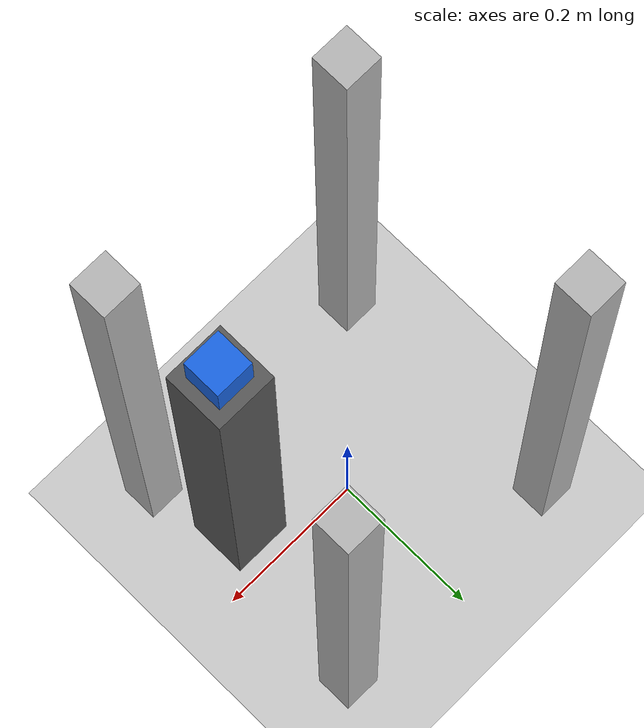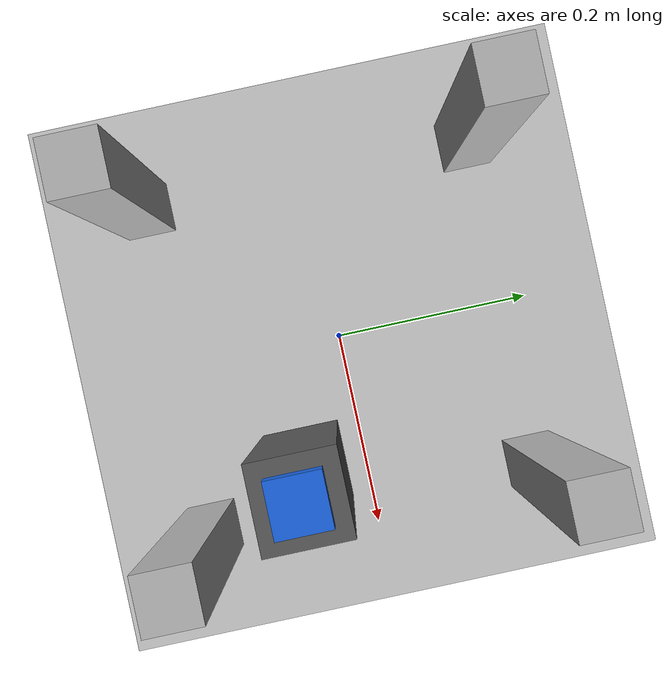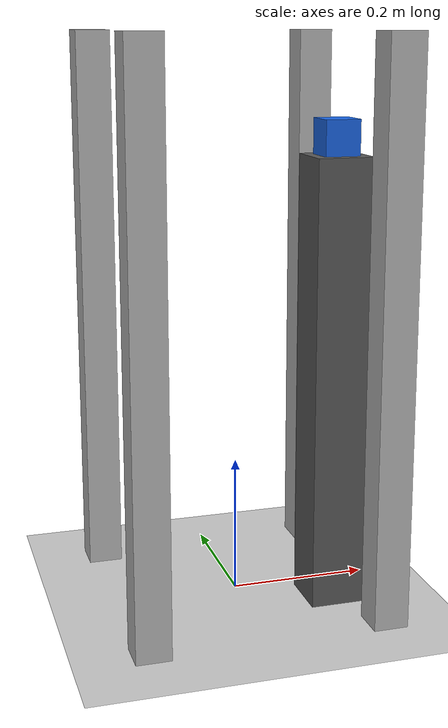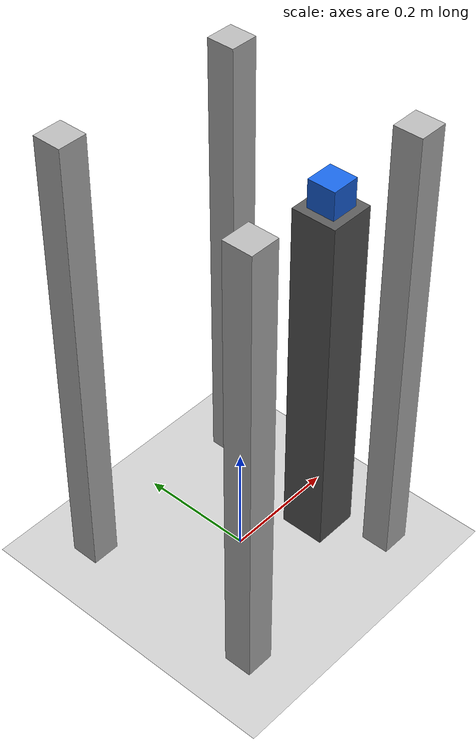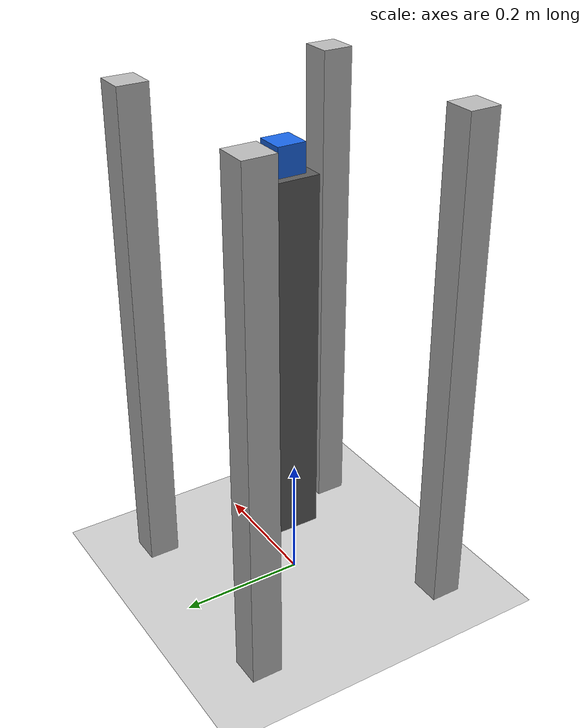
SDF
<?xml version="1.0"?>
<sdf version="1.9">
  <!-- Validation-only world.  The box is a generic 0.25 kg test object, not
       the user's final payload; its pose is aligned with formal work_a. -->
  <world name="flight_world">
    <gravity>0 0 -9.81</gravity>
    <magnetic_field>6e-06 2.3e-05 -4.2e-05</magnetic_field>
    <atmosphere type="adiabatic"/>
    <physics name="flight_step" type="ignored">
      <max_step_size>0.004</max_step_size>
      <real_time_factor>1.0</real_time_factor>
    </physics>
    <plugin filename="gz-sim-physics-system" name="gz::sim::systems::Physics"/>
    <plugin filename="gz-sim-user-commands-system" name="gz::sim::systems::UserCommands"/>
    <plugin filename="gz-sim-scene-broadcaster-system" name="gz::sim::systems::SceneBroadcaster"/>
    <plugin filename="gz-sim-contact-system" name="gz::sim::systems::Contact"/>
    <plugin filename="gz-sim-apply-link-wrench-system" name="gz::sim::systems::ApplyLinkWrench"/>
    <plugin filename="libdrone_latest_wrench_system.so" name="drone_motor_system::LatestWrenchSystem">
      <topic>/world/flight_world/wrench/latest</topic>
      <wall_timeout_s>1.0</wall_timeout_s>
    </plugin>
    <plugin filename="gz-sim-sensors-system" name="gz::sim::systems::Sensors">
      <render_engine>ogre2</render_engine>
    </plugin>
    <plugin filename="gz-sim-imu-system" name="gz::sim::systems::Imu"/>
    <plugin filename="gz-sim-magnetometer-system" name="gz::sim::systems::Magnetometer"/>
    <plugin filename="gz-sim-air-pressure-system" name="gz::sim::systems::AirPressure"/>
    <plugin filename="gz-sim-navsat-system" name="gz::sim::systems::NavSat"/>
    <spherical_coordinates>
      <surface_model>EARTH_WGS84</surface_model>
      <world_frame_orientation>ENU</world_frame_orientation>
      <latitude_deg>47.3979710577</latitude_deg>
      <longitude_deg>8.5461637398</longitude_deg>
      <elevation>0</elevation>
      <heading_deg>0</heading_deg>
    </spherical_coordinates>
    <light type="directional" name="sun">
      <cast_shadows>true</cast_shadows>
      <pose>0 0 10 0 0 0</pose>
      <diffuse>0.8 0.8 0.8 1</diffuse>
      <specular>0.2 0.2 0.2 1</specular>
      <direction>-0.5 0.1 -0.9</direction>
    </light>
    <model name="ground_plane">
      <static>true</static>
      <link name="link">
        <collision name="collision"><geometry><plane><normal>0 0 1</normal><size>100 100</size></plane></geometry></collision>
        <visual name="visual"><geometry><plane><normal>0 0 1</normal><size>100 100</size></plane></geometry></visual>
      </link>
    </model>
    <!-- Four corner supports hold the dynamic CAD airframe at its 1 m spawn
         pose without freezing the SO101 links or applying flight thrust. -->
    <model name="aircraft_contact_fixture">
      <static>true</static>
      <link name="front_left_support">
        <pose>0.17 0.17 0.4085 0 0 0</pose>
        <collision name="collision"><geometry><box><size>0.05 0.05 0.817</size></box></geometry></collision>
        <visual name="visual"><geometry><box><size>0.05 0.05 0.817</size></box></geometry></visual>
      </link>
      <link name="front_right_support">
        <pose>0.17 -0.17 0.4085 0 0 0</pose>
        <collision name="collision"><geometry><box><size>0.05 0.05 0.817</size></box></geometry></collision>
        <visual name="visual"><geometry><box><size>0.05 0.05 0.817</size></box></geometry></visual>
      </link>
      <link name="rear_left_support">
        <pose>-0.17 0.17 0.4085 0 0 0</pose>
        <collision name="collision"><geometry><box><size>0.05 0.05 0.817</size></box></geometry></collision>
        <visual name="visual"><geometry><box><size>0.05 0.05 0.817</size></box></geometry></visual>
      </link>
      <link name="rear_right_support">
        <pose>-0.17 -0.17 0.4085 0 0 0</pose>
        <collision name="collision"><geometry><box><size>0.05 0.05 0.817</size></box></geometry></collision>
        <visual name="visual"><geometry><box><size>0.05 0.05 0.817</size></box></geometry></visual>
      </link>
    </model>
    <!-- A narrow static pedestal keeps the dynamic object at the formal
         work_a height while the aircraft is held at its 1 m test hover. -->
    <model name="grasp_test_pedestal">
      <static>true</static>
      <pose>0.12704 -0.06047 0.325 0 0 0</pose>
      <link name="link">
        <collision name="collision">
          <geometry><box><size>0.08 0.08 0.65</size></box></geometry>
          <surface><friction><ode><mu>0.9</mu><mu2>0.9</mu2></ode></friction></surface>
        </collision>
        <visual name="visual">
          <geometry><box><size>0.08 0.08 0.65</size></box></geometry>
          <material><ambient>0.35 0.35 0.35 1</ambient><diffuse>0.35 0.35 0.35 1</diffuse></material>
        </visual>
      </link>
    </model>
    <model name="grasp_test_object">
      <pose>0.12704 -0.06047 0.6750 0 0 0</pose>
      <link name="link">
        <inertial>
          <mass>0.25</mass>
          <inertia><ixx>0.0000667</ixx><iyy>0.0000667</iyy><izz>0.0000667</izz></inertia>
        </inertial>
        <collision name="collision">
          <geometry><box><size>0.05 0.05 0.05</size></box></geometry>
          <surface><friction><ode><mu>0.8</mu><mu2>0.8</mu2></ode></friction></surface>
        </collision>
        <sensor name="contact_sensor" type="contact">
          <always_on>true</always_on>
          <update_rate>250</update_rate>
          <contact>
            <collision>collision</collision>
          </contact>
        </sensor>
        <visual name="visual">
          <geometry><box><size>0.05 0.05 0.05</size></box></geometry>
          <material><ambient>0.1 0.4 0.9 1</ambient><diffuse>0.1 0.4 0.9 1</diffuse></material>
        </visual>
      </link>
    </model>
  </world>
</sdf>
